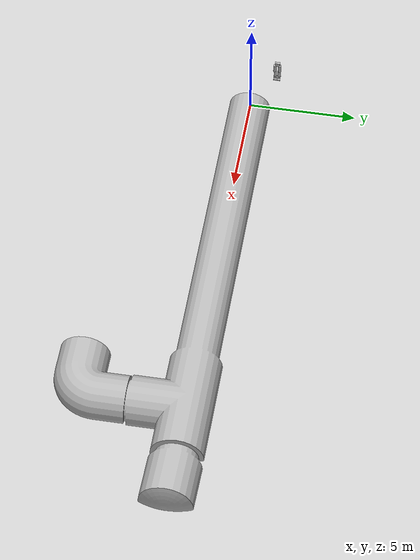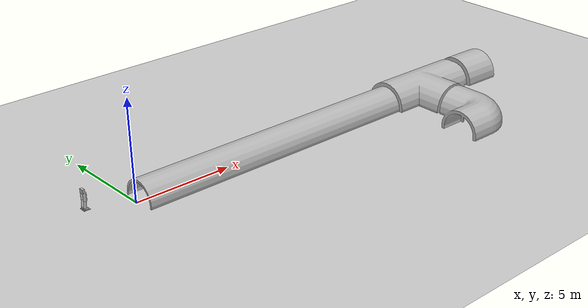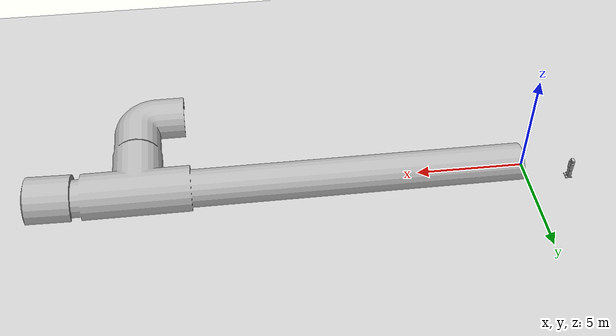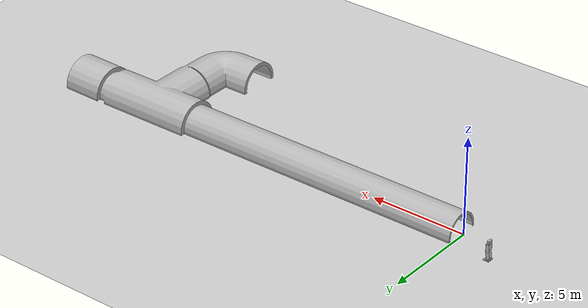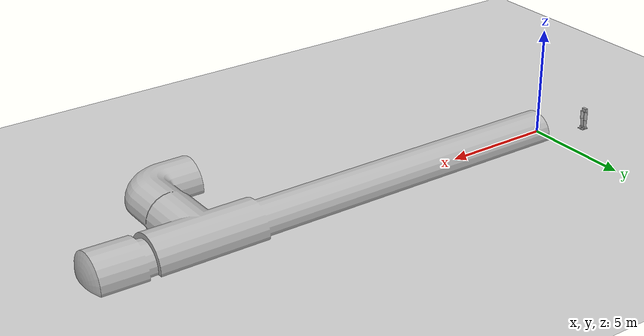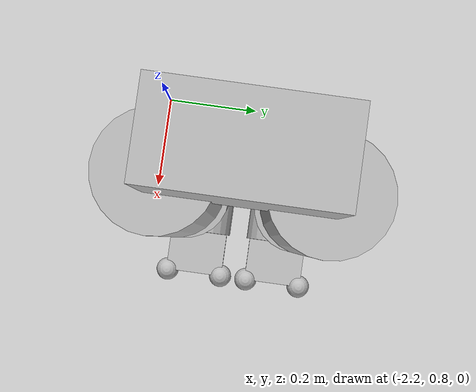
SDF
<gazebo version="1.2">
 <world name="default">
  <physics type="ode">
   <gravity>0 0 -9.81</gravity>
   <ode>
    <solver><type>quick</type><dt>0.001</dt><iters>40</iters><sor>1.0</sor></solver>
    <constraints>
     <cfm>0.0</cfm>
     <erp>0.2</erp>
     <contact_max_correcting_vel>100.0</contact_max_correcting_vel>
     <contact_surface_layer>0.0</contact_surface_layer>
    </constraints>
   </ode>
  </physics>
  <include><uri>model://sun</uri></include>
  <include><uri>model://ground_plane</uri></include>
  <include><uri>model://standpipe</uri></include>
  <include><uri>model://atlas</uri><pose>-2 1.0 0.93 0 0 0</pose></include>
  <plugin filename="libVRCPlugin.so" name="vrc_plugin">
   <atlas><model_name>atlas</model_name><pin_link>utorso</pin_link></atlas>
   <drc_vehicle><model_name>golf_cart</model_name><seat_link>chassis</seat_link></drc_vehicle>
   <drc_fire_hose>
    <fire_hose_model>fire_hose</fire_hose_model>
    <coupling_link>coupling</coupling_link>
    <standpipe_model>standpipe</standpipe_model>
    <spout_link>standpipe</spout_link>
    <thread_pitch>-1000</thread_pitch>
    <coupling_relative_pose>1.17038e-05 -0.125623 0.35 -0.0412152 -1.57078 1.61199</coupling_relative_pose>
   </drc_fire_hose>
  </plugin>
 </world>
</gazebo>

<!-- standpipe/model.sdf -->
<sdf version="1.5">
  <model name="standpipe">
    <static>true</static>
    <link name="standpipe">
      <pose>0 0 0.1 0 1.57078 0</pose>
      <collision name="collision_stopper">
        <pose>0 0 0.22 0 0 0</pose>
        <geometry>
          <cylinder>
            <radius>0.069</radius>
            <length>0.1</length>
          </cylinder>
        </geometry>
        <surface>
          <friction>
            <ode>
              <mu>0.5</mu>
              <mu2>0.5</mu2>
            </ode>
          </friction>
        </surface>
      </collision>
      <collision name="collision">
        <pose>0 0 0.15 0 0 0</pose>
        <geometry>
          <mesh>
            <uri>model://../model_source/models/standpipe/meshes/standpipe.dae</uri>
          </mesh>
        </geometry>
        <surface>
          <friction>
            <ode>
              <mu>0.5</mu>
              <mu2>0.5</mu2>
            </ode>
          </friction>
        </surface>
      </collision>
      <visual name="visual">
        <pose>0 0 0.15 0 0 0</pose>
        <geometry>
          <mesh>
            <uri>model://../model_source/models/standpipe/meshes/standpipe.dae</uri>
          </mesh>
        </geometry>
      </visual>
    </link>
  </model>
</sdf>

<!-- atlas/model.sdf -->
<sdf version='1.5'>
  <model name='ROBOT'>
  <plugin name="PacerPlugin" filename="libPacerGazeboPlugin.so"/>
  <pose>0 0 1 0 -0 0</pose>
    <link name='BODY0'>
      <pose>0 0 0 0 -0 0</pose>
      <inertial>
        <mass>14.2529</mass>
        <inertia>
          <ixx>0.1</ixx>
          <ixy>0.0</ixy>
          <ixz>-0.0</ixz>
          <iyy>0.1</iyy>
          <iyz>-0.0</iyz>
          <izz>0.1</izz>
        </inertia>
      </inertial>
      <visual name='BODY0_visual'>
        <geometry>
          <box>
            <size>0.12 0.24 0.20</size>
          </box>
        </geometry>
      </visual>
      <velocity_decay>
        <linear>0</linear>
        <angular>0</angular>
      </velocity_decay>
    </link>
    <link name='l_uglut'>
      <pose>0 0.089 0 0 -0 0</pose>
      <inertial>
        <pose>0 0 0 0 0 0</pose>
        <mass>0.5166</mass>
        <inertia>
          <ixx>0.01</ixx>
          <ixy>0.0</ixy>
          <ixz>-0.0</ixz>
          <iyy>0.01</iyy>
          <iyz>-0.0</iyz>
          <izz>0.01</izz>
        </inertia>
      </inertial>
      <visual name='l_uglut_visual'>
        <pose>0 0 0 0 1.57079 0</pose>
        <geometry>
          <cylinder>
            <length>0.078396</length>
            <radius>0.019096</radius>
          </cylinder>
        </geometry>
      </visual>
      <velocity_decay>
        <linear>0</linear>
        <angular>0</angular>
      </velocity_decay>
    </link>
    <joint name='l_leg_uhz1' type='revolute'>
      <child>l_uglut</child>
      <parent>BODY0</parent>
      <axis>
        <xyz>0 0 1</xyz>
        <limit>
          <lower>-1e+16</lower>
          <upper>1e+16</upper>
        </limit>
        <dynamics/>
        <use_parent_model_frame>1</use_parent_model_frame>
      </axis>
    </joint>
    <link name='l_lglut'>
      <pose>0 0.089 0 0 -0 0</pose>
      <inertial>
        <pose>0 0 0 0 0 0</pose>
        <mass>0.69</mass>
        <inertia>
          <ixx>0.01</ixx>
          <ixy>0.0</ixy>
          <ixz>-0.0</ixz>
          <iyy>0.01</iyy>
          <iyz>-0.0</iyz>
          <izz>0.01</izz>
        </inertia>
      </inertial>
      <visual name='l_lglut_visual'>
        <pose>0 0 0 0 0 0</pose>
        <geometry>
          <cylinder>
            <length>0.060306</length>
            <radius>0.0200969</radius>
          </cylinder>
        </geometry>
      </visual>
      <velocity_decay>
        <linear>0</linear>
        <angular>0</angular>
      </velocity_decay>
    </link>
    <joint name='l_leg_mhx2' type='revolute'>
      <child>l_lglut</child>
      <parent>l_uglut</parent>
      <axis>
        <xyz>1 0 0</xyz>
        <limit>
          <lower>-1e+16</lower>
          <upper>1e+16</upper>
        </limit>
        <dynamics/>
        <use_parent_model_frame>1</use_parent_model_frame>
      </axis>
    </joint>
    <link name='l_uleg'>
      <pose>0.05 0.089 -0.05 0 -0 0</pose>
      <inertial>
        <pose>0 0 -0.21 0 -0 0</pose>
        <mass>7.34</mass>
        <inertia>
          <ixx>0.01</ixx>
          <ixy>0.0</ixy>
          <ixz>-0.0</ixz>
          <iyy>0.01</iyy>
          <iyz>-0.0</iyz>
          <izz>0.01</izz>
        </inertia>
      </inertial>
      <visual name='l_uleg_visual'>
        <pose>-0.0179 0.02085 -0.2 0 -0 0</pose>
        <geometry>
          <cylinder>
            <length>0.4</length>
            <radius>0.08</radius>
          </cylinder>
        </geometry>
      </visual>
      <velocity_decay>
        <linear>0</linear>
        <angular>0</angular>
      </velocity_decay>
    </link>
    <joint name='l_leg_lhy3' type='revolute'>
      <child>l_uleg</child>
      <parent>l_lglut</parent>
      <axis>
        <xyz>0 1 0</xyz>
        <limit>
          <lower>-1e+16</lower>
          <upper>1e+16</upper>
        </limit>
        <dynamics/>
        <use_parent_model_frame>1</use_parent_model_frame>
      </axis>
    </joint>
    <link name='l_lleg'>
      <pose>0 0.089 -0.424 0 -0 0</pose>
      <inertial>
        <pose>0.001 0 -0.187 0 -0 0</pose>
        <mass>4.367</mass>
        <inertia>
          <ixx>0.01</ixx>
          <ixy>0.0</ixy>
          <ixz>-0.0</ixz>
          <iyy>0.01</iyy>
          <iyz>-0.0</iyz>
          <izz>0.01</izz>
        </inertia>
      </inertial>
      <visual name='l_lleg_visual'>
        <pose>0.02 0.00295 -0.18 0 0.1 0</pose>
        <geometry>
          <cylinder>
            <length>0.4</length>
            <radius>0.07</radius>
          </cylinder>
        </geometry>
      </visual>
      <velocity_decay>
        <linear>0</linear>
        <angular>0</angular>
      </velocity_decay>
    </link>
    <joint name='l_leg_kny4' type='revolute'>
      <child>l_lleg</child>
      <parent>l_uleg</parent>
      <axis>
        <xyz>0 1 0</xyz>
        <limit>
          <lower>-1e+16</lower>
          <upper>1e+16</upper>
        </limit>
        <dynamics/>
        <use_parent_model_frame>1</use_parent_model_frame>
      </axis>
    </joint>
    <link name='l_talus'>
      <pose>0 0.089 -0.846 0 -0 0</pose>
      <inertial>
        <pose>0 0 0 0 -0 0</pose>
        <mass>0.1</mass>
        <inertia>
          <ixx>0.01</ixx>
          <ixy>0.0</ixy>
          <ixz>-0.0</ixz>
          <iyy>0.01</iyy>
          <iyz>-0.0</iyz>
          <izz>0.01</izz>
        </inertia>
      </inertial>
      <visual name='l_talus_visual'>
        <pose>0.02 0 0 -2.65359e-06 1.57079 -2.65359e-06</pose>
        <geometry>
          <cylinder>
            <length>0.15</length>
            <radius>0.07</radius>
          </cylinder>
        </geometry>
      </visual>
      <velocity_decay>
        <linear>0</linear>
        <angular>0</angular>
      </velocity_decay>
    </link>
    <joint name='l_leg_uay5' type='revolute'>
      <child>l_talus</child>
      <parent>l_lleg</parent>
      <axis>
        <xyz>0 1 0</xyz>
        <limit>
          <lower>-1e+16</lower>
          <upper>1e+16</upper>
        </limit>
        <dynamics/>
        <use_parent_model_frame>1</use_parent_model_frame>
      </axis>
    </joint>
    <link name='l_foot'>
      <pose>0.01 0.089 -0.846 0 -0 0</pose>
      <inertial>
        <pose>0.027 0 -0.067 0 -0 0</pose>
        <mass>1.634</mass>
        <inertia>
          <ixx>0.01</ixx>
          <ixy>0.0</ixy>
          <ixz>-0.0</ixz>
          <iyy>0.01</iyy>
          <iyz>-0.0</iyz>
          <izz>0.01</izz>
        </inertia>
      </inertial>
      <collision name='l_foot_collision'>
        <pose>0.178 0.06 -0.056119 0 -0 0</pose>
        <geometry>
          <sphere>
            <radius>0.025</radius>
          </sphere>
        </geometry>
      </collision>
      <collision name='l_foot_collision'>
        <pose>0.178 -0.06 -0.056119 0 -0 0</pose>
        <geometry>
          <sphere>
            <radius>0.025</radius>
          </sphere>
        </geometry>
      </collision>
      <collision name='l_foot_collision'>
        <pose>-0.098 0.06 -0.056119 0 -0 0</pose>
        <geometry>
          <sphere>
            <radius>0.025</radius>
          </sphere>
        </geometry>
      </collision>
      <collision name='l_foot_collision'>
        <pose>-0.098 -0.06 -0.056119 0 -0 0</pose>
        <geometry>
          <sphere>
            <radius>0.025</radius>
          </sphere>
        </geometry>
      </collision>

      <visual name='l_foot_visual1'>
        <pose>0.048 0 -0.056119 0 -0 0</pose>
        <geometry>
          <box>
            <size>0.26 0.124887 0.03</size>
          </box>
        </geometry>
      </visual>
      <visual name='l_foot_visual2'>
        <pose>0.178 0.06 -0.056119 0 -0 0</pose>
        <geometry>
          <sphere>
            <radius>0.025</radius>
          </sphere>
        </geometry>
      </visual>
      <visual name='l_foot_visual3'>
        <pose>0.178 -0.06 -0.056119 0 -0 0</pose>
        <geometry>
          <sphere>
            <radius>0.025</radius>
          </sphere>
        </geometry>
      </visual>
      <visual name='l_foot_visual4'>
      <pose>-0.098 0.06 -0.056119 0 -0 0</pose>
        <geometry>
          <sphere>
            <radius>0.025</radius>
          </sphere>
        </geometry>
      </visual>
      <visual name='l_foot_visual5'>
      <pose>-0.098 -0.06 -0.056119 0 -0 0</pose>
        <geometry>
          <sphere>
            <radius>0.025</radius>
          </sphere>
        </geometry>
      </visual>

      <velocity_decay>
        <linear>0</linear>
        <angular>0</angular>
      </velocity_decay>

      <sensor name='l_foot_contact' type='contact'>
        <contact>
          <collision>l_foot_collision</collision>
        </contact>
        <update_rate>1000</update_rate>
      </sensor>
    </link>
    <joint name='l_leg_lax6' type='revolute'>
      <child>l_foot</child>
      <parent>l_talus</parent>
      <axis>
        <xyz>1 0 0</xyz>
        <limit>
          <lower>-1e+16</lower>
          <upper>1e+16</upper>
        </limit>
        <dynamics/>
        <use_parent_model_frame>1</use_parent_model_frame>
      </axis>
    </joint>
    <link name='r_uglut'>
      <pose>0 -0.089 0 0 -0 0</pose>
      <inertial>
      <pose>0 0 0 0 0 0</pose>
        <mass>0.5166</mass>
        <inertia>
          <ixx>0.01</ixx>
          <ixy>0.0</ixy>
          <ixz>-0.0</ixz>
          <iyy>0.01</iyy>
          <iyz>-0.0</iyz>
          <izz>0.01</izz>
        </inertia>
      </inertial>
      <visual name='r_uglut_visual'>
        <pose>0 0 0 0 1.57079 0</pose>
        <geometry>
          <cylinder>
            <length>0.078396</length>
            <radius>0.019096</radius>
          </cylinder>
        </geometry>
      </visual>
      <velocity_decay>
        <linear>0</linear>
        <angular>0</angular>
      </velocity_decay>
    </link>
    <joint name='r_leg_uhz1' type='revolute'>
      <child>r_uglut</child>
      <parent>BODY0</parent>
      <axis>
        <xyz>0 0 1</xyz>
        <limit>
          <lower>-1e+16</lower>
          <upper>1e+16</upper>
        </limit>
        <dynamics/>
        <use_parent_model_frame>1</use_parent_model_frame>
      </axis>
    </joint>
    <link name='r_lglut'>
      <pose>0 -0.089 0 0 -0 0</pose>
      <inertial>
      <pose>0 0 0 0 0 0</pose>
        <mass>0.69</mass>
        <inertia>
          <ixx>0.01</ixx>
          <ixy>0.0</ixy>
          <ixz>-0.0</ixz>
          <iyy>0.01</iyy>
          <iyz>-0.0</iyz>
          <izz>0.01</izz>
        </inertia>
      </inertial>
      <visual name='r_lglut_visual'>
      <pose>0 0 0 0 0 0</pose>
        <geometry>
          <cylinder>
            <length>0.060306</length>
            <radius>0.0200969</radius>
          </cylinder>
        </geometry>
      </visual>
      <velocity_decay>
        <linear>0</linear>
        <angular>0</angular>
      </velocity_decay>
    </link>
    <joint name='r_leg_mhx2' type='revolute'>
      <child>r_lglut</child>
      <parent>r_uglut</parent>
      <axis>
        <xyz>1 0 0</xyz>
        <limit>
          <lower>-1e+16</lower>
          <upper>1e+16</upper>
        </limit>
        <dynamics/>
        <use_parent_model_frame>1</use_parent_model_frame>
      </axis>
    </joint>
    <link name='r_uleg'>
      <pose>0.05 -0.089 -0.05 0 -0 0</pose>
      <inertial>
        <pose>0 0 -0.21 0 -0 0</pose>
        <mass>7.34</mass>
        <inertia>
          <ixx>0.01</ixx>
          <ixy>0.0</ixy>
          <ixz>-0.0</ixz>
          <iyy>0.01</iyy>
          <iyz>-0.0</iyz>
          <izz>0.01</izz>
        </inertia>
      </inertial>
      <visual name='r_uleg_visual'>
        <pose>-0.0179 -0.02085 -0.20 0 -0 0</pose>
        <geometry>
          <cylinder>
          <length>0.4</length>
          <radius>0.08</radius>
          </cylinder>
        </geometry>
      </visual>
      <velocity_decay>
        <linear>0</linear>
        <angular>0</angular>
      </velocity_decay>
    </link>
    <joint name='r_leg_lhy3' type='revolute'>
      <child>r_uleg</child>
      <parent>r_lglut</parent>
      <axis>
        <xyz>0 1 0</xyz>
        <limit>
          <lower>-1e+16</lower>
          <upper>1e+16</upper>
        </limit>
        <dynamics/>
        <use_parent_model_frame>1</use_parent_model_frame>
      </axis>
    </joint>
    <link name='r_lleg'>
      <pose>0 -0.089 -0.424 0 -0 0</pose>
      <inertial>
        <pose>0.001 0 -0.187 0 -0 0</pose>
        <mass>4.367</mass>
        <inertia>
          <ixx>0.01</ixx>
          <ixy>0.0</ixy>
          <ixz>-0.0</ixz>
          <iyy>0.01</iyy>
          <iyz>-0.0</iyz>
          <izz>0.01</izz>
        </inertia>
      </inertial>
      <visual name='r_lleg_visual'>
        <pose>0.02 -0.00295 -0.18 0 0.1 0</pose>
        <geometry>
          <cylinder>
            <length>0.4</length>
            <radius>0.07</radius>
          </cylinder>
        </geometry>
      </visual>
      <velocity_decay>
        <linear>0</linear>
        <angular>0</angular>
      </velocity_decay>
    </link>
    <joint name='r_leg_kny4' type='revolute'>
      <child>r_lleg</child>
      <parent>r_uleg</parent>
      <axis>
        <xyz>0 1 0</xyz>
        <limit>
          <lower>-1e+16</lower>
          <upper>1e+16</upper>
        </limit>
        <dynamics/>
        <use_parent_model_frame>1</use_parent_model_frame>
      </axis>
    </joint>
    <link name='r_talus'>
      <pose>0 -0.089 -0.846 0 -0 0</pose>
      <inertial>
        <pose>0 0 0 0 -0 0</pose>
        <mass>0.1</mass>
        <inertia>
          <ixx>0.01</ixx>
          <ixy>0.0</ixy>
          <ixz>-0.0</ixz>
          <iyy>0.01</iyy>
          <iyz>-0.0</iyz>
          <izz>0.01</izz>
        </inertia>
      </inertial>
      <visual name='r_talus_visual'>
        <pose>0.02 0 0 -2.65359e-06 1.57079 -2.65359e-06</pose>
        <geometry>
          <cylinder>
            <length>0.15</length>
            <radius>0.07</radius>
          </cylinder>
        </geometry>
      </visual>
      <velocity_decay>
        <linear>0</linear>
        <angular>0</angular>
      </velocity_decay>
    </link>
    <joint name='r_leg_uay5' type='revolute'>
      <child>r_talus</child>
      <parent>r_lleg</parent>
      <axis>
        <xyz>0 1 0</xyz>
        <limit>
          <lower>-1e+16</lower>
          <upper>1e+16</upper>
        </limit>
        <dynamics/>
        <use_parent_model_frame>1</use_parent_model_frame>
      </axis>
    </joint>
    <link name='r_foot'>
      <pose>0.01 -0.089 -0.846 0 -0 0</pose>
      <inertial>
        <pose>0.027 0 -0.067 0 -0 0</pose>
        <mass>1.634</mass>
        <inertia>
          <ixx>0.01</ixx>
          <ixy>0.0</ixy>
          <ixz>-0.0</ixz>
          <iyy>0.01</iyy>
          <iyz>-0.0</iyz>
          <izz>0.01</izz>
        </inertia>
      </inertial>

      <collision name='r_foot_collision'>
        <pose>0.178 0.06 -0.056119 0 -0 0</pose>
        <geometry>
          <sphere>
            <radius>0.025</radius>
          </sphere>
        </geometry>
      </collision>
      <collision name='r_foot_collision'>
        <pose>0.178 -0.06 -0.056119 0 -0 0</pose>
        <geometry>
          <sphere>
            <radius>0.025</radius>
          </sphere>
        </geometry>
      </collision>
      <collision name='r_foot_collision'>
        <pose>-0.098 0.06 -0.056119 0 -0 0</pose>
        <geometry>
          <sphere>
            <radius>0.025</radius>
          </sphere>
        </geometry>
      </collision>
      <collision name='r_foot_collision'>
        <pose>-0.098 -0.06 -0.056119 0 -0 0</pose>
        <geometry>
          <sphere>
            <radius>0.025</radius>
          </sphere>
        </geometry>
      </collision>

      <visual name='r_foot_visual1'>
        <pose>0.048 0 -0.056119 0 -0 0</pose>
        <geometry>
          <box>
            <size>0.26 0.124887 0.03</size>
          </box>
        </geometry>
      </visual>
      <visual name='r_foot_visual2'>
        <pose>0.178 0.06 -0.056119 0 -0 0</pose>
        <geometry>
          <sphere>
            <radius>0.025</radius>
          </sphere>
        </geometry>
      </visual>
      <visual name='r_foot_visual3'>
        <pose>0.178 -0.06 -0.056119 0 -0 0</pose>
        <geometry>
          <sphere>
            <radius>0.025</radius>
          </sphere>
        </geometry>
      </visual>
      <visual name='r_foot_visual4'>
      <pose>-0.098 0.06 -0.056119 0 -0 0</pose>
        <geometry>
          <sphere>
            <radius>0.025</radius>
          </sphere>
        </geometry>
      </visual>
      <visual name='r_foot_visual5'>
      <pose>-0.098 -0.06 -0.056119 0 -0 0</pose>
        <geometry>
          <sphere>
            <radius>0.025</radius>
          </sphere>
        </geometry>
      </visual>

      <velocity_decay>
        <linear>0</linear>
        <angular>0</angular>
      </velocity_decay>

      <sensor name='r_foot_contact' type='contact'>
        <contact>
          <collision>r_foot_collision</collision>
        </contact>
        <update_rate>1000</update_rate>
      </sensor>
    </link>
    <joint name='r_leg_lax6' type='revolute'>
      <child>r_foot</child>
      <parent>r_talus</parent>
      <axis>
        <xyz>1 0 0</xyz>
        <limit>
          <lower>-1e+16</lower>
          <upper>1e+16</upper>
        </limit>
        <dynamics/>
        <use_parent_model_frame>1</use_parent_model_frame>
      </axis>
    </joint>
  </model>
</sdf>
